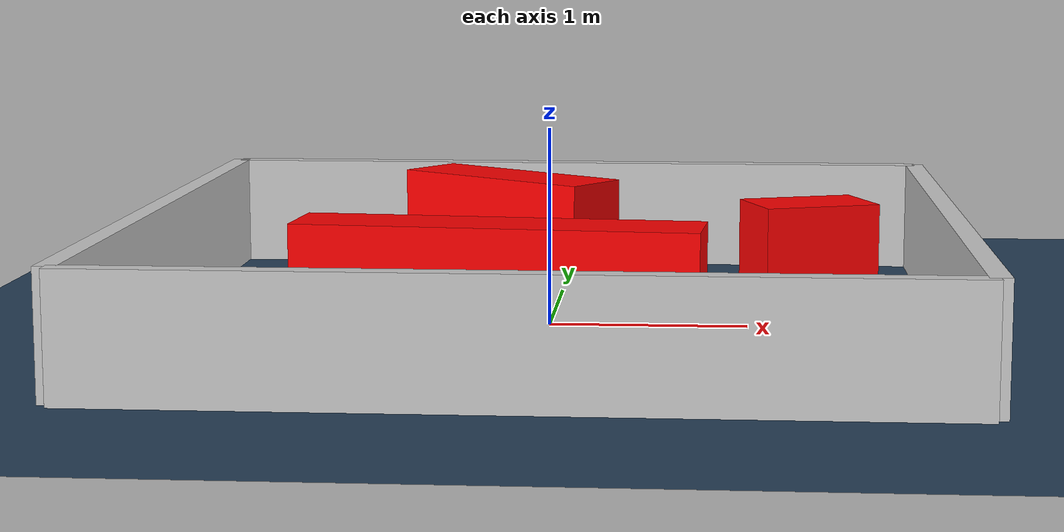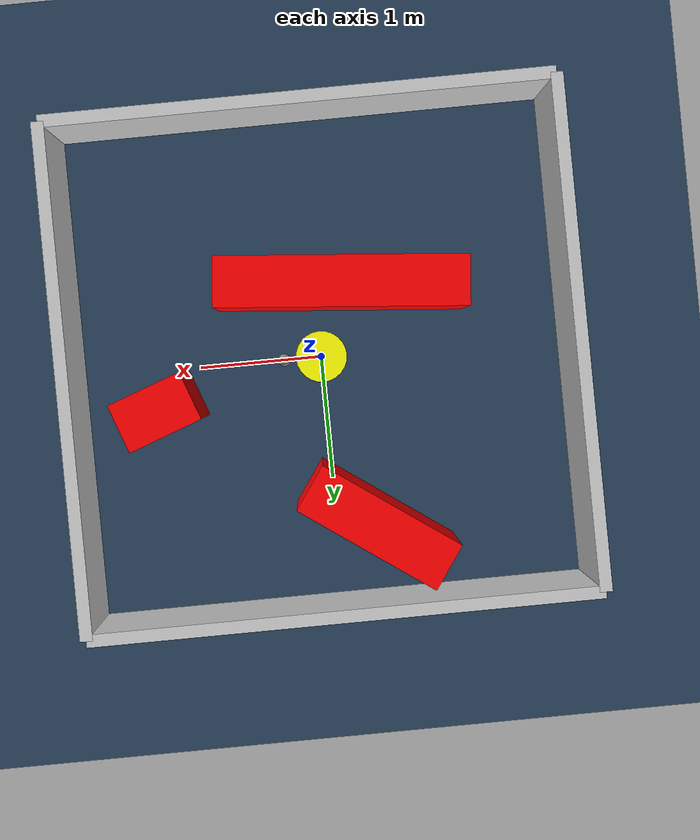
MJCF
<?xml version="1.0" ?>
<mujoco model="generated_environment">
  <option timestep="0.01" integrator="RK4" cone="elliptic"/>
  <default>
    <geom density="1"/>
  </default>
  <asset>
    <texture builtin="gradient" height="3072" rgb1="0.3 0.5 0.7" rgb2="0 0 0" type="skybox" width="512"/>
    <texture builtin="checker" height="300" mark="edge" markrgb="0.8 0.8 0.8" name="groundplane" rgb1="0.2 0.3 0.4" rgb2="0.1 0.2 0.3" type="2d" width="300"/>
    <material name="groundplane" reflectance="0.2" texrepeat="5 5" texture="groundplane" texuniform="true"/>
    <material name="robot" rgba="0.0 1.0 0.0 1"/>
  </asset>
  <worldbody>
    <light dir="0 0 -1" directional="true" pos="0 0 1.5"/>
    <geom condim="4" friction="1.0 0.005 0.001" material="groundplane" name="floor" size="0 0 0.05" type="plane"/>
    <body name="walls">
      <geom name="wall_1" condim="4" pos="-2.0 0.0 0.3" rgba="0.800000011920929 0.800000011920929 0.800000011920929 1.0" size="0.05 2.0 0.3" type="box"/>
      <geom name="wall_2" condim="4" pos="2.0 0.0 0.3" rgba="0.800000011920929 0.800000011920929 0.800000011920929 1.0" size="0.05 2.0 0.3" type="box"/>
      <geom name="wall_3" condim="4" pos="0.0 -2.0 0.3" rgba="0.800000011920929 0.800000011920929 0.800000011920929 1.0" size="2.0 0.05 0.3" type="box"/>
      <geom name="wall_4" condim="4" pos="0.0 2.0 0.3" rgba="0.800000011920929 0.800000011920929 0.800000011920929 1.0" size="2.0 0.05 0.3" type="box"/>
    </body>
    <body name="robot">
      <joint name="joint_x" type="slide" pos="0 0 0" axis="1 0 0"/>
      <joint name="joint_y" type="slide" pos="0 0 0" axis="0 1 0"/>
      <geom name="robot" type="sphere" pos="0.3 0.0 0.2" size="0.05" mass="5." friction="1.0 0.005 0.0001" condim="4" rgba="0.5 0.5 0.5 1.0"/>
      <site name="sensor_ball"/>
    </body>
    <body name="obstacle_movable_1">
      <geom name="obstacle_movable_1" condim="4" pos="0.0 0.0 0.2" euler="0 0 0.0" friction="1.0 0.005 0.001" rgba="1.0 1.0 0.0 1.0" size="0.2 0.2 0.0" type="cylinder" mass="0.1"/>
      <joint type="free"/>
    </body>
    <body name="obstacle_2_static">
      <geom name="obstacle_2_static" condim="4" pos="1.315951662665715 0.30536479538346595 0.3" euler="0 0 199.98435492095007" friction="1.0 0.005 0.001" rgba="1 0 0 1" size="0.3037703174248352 0.2 0.3" type="box"/>
    </body>
    <body name="obstacle_3_static">
      <geom name="obstacle_3_static" condim="4" pos="-0.20657065823750675 -0.5660540146597641 0.3" euler="0 0 175.0733820480246" friction="1.0 0.005 0.001" rgba="1 0 0 1" size="0.9906458486574006 0.2 0.3" type="box"/>
    </body>
    <body name="obstacle_4_static">
      <geom name="obstacle_4_static" condim="4" pos="-0.3183605448979674 1.3491609536493103 0.3" euler="0 0 324.89579553806925" friction="1.0 0.005 0.001" rgba="1 0 0 1" size="0.6174679875883378 0.2 0.3" type="box"/>
    </body>
  </worldbody>
  <actuator>
    <motor name="actuator_x" joint="joint_x" gear="1" ctrlrange="-1 1"/>
    <motor name="actuator_y" joint="joint_y" gear="1" ctrlrange="-1 1"/>
  </actuator>
</mujoco>
